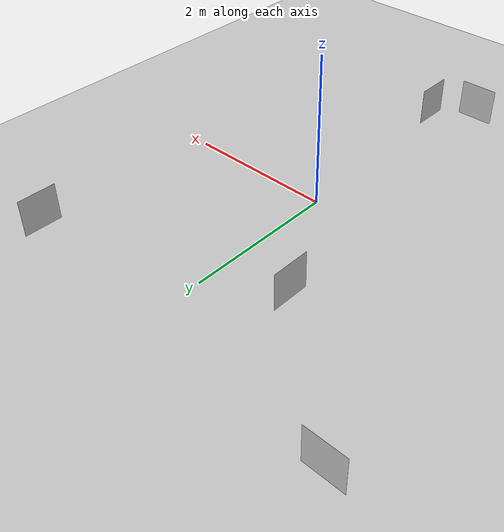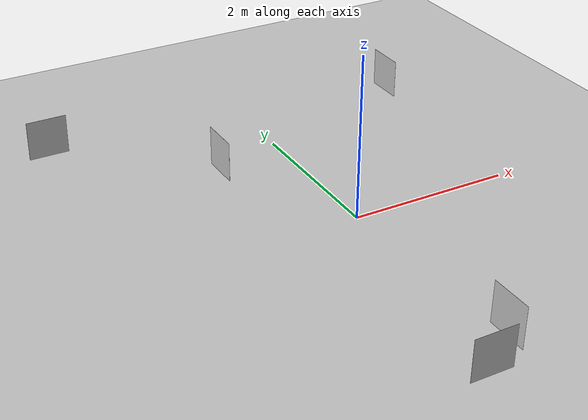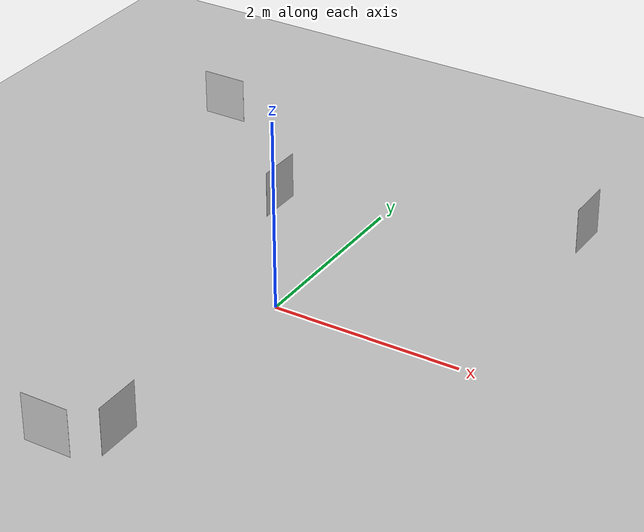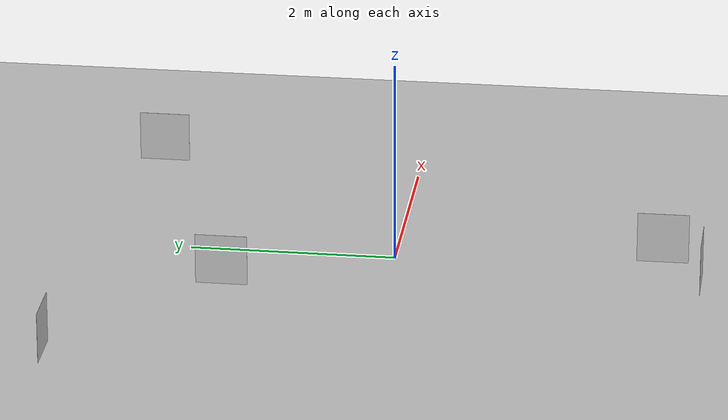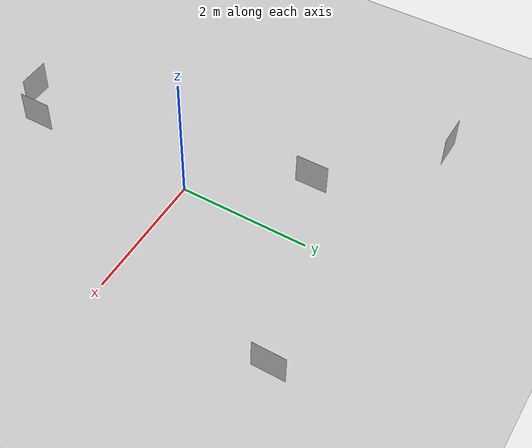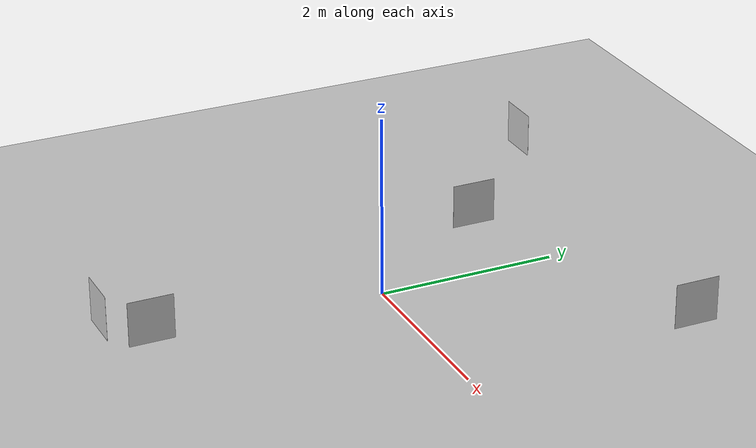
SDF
<sdf version="1.7">
 <world name="default">
  <scene><ambient>1 1 1 1</ambient><background>0.8 0.8 0.8 1</background></scene>
  <light name="sun" type="directional">
   <pose>0 0 10 0 -0 0</pose>
   <diffuse>0.8 0.8 0.8 1</diffuse>
   <specular>0.2 0.2 0.2 1</specular>
   <attenuation>
    <range>1000</range>
    <constant>0.9</constant>
    <linear>0.01</linear>
    <quadratic>0.001</quadratic>
   </attenuation>
   <direction>-0.5 0.1 -0.9</direction>
   <spot><inner_angle>0</inner_angle><outer_angle>0</outer_angle><falloff>0</falloff></spot>
  </light>
  <model name="ground_plane">
   <static>1</static>
   <link name="link">
    <collision name="collision">
     <geometry><plane><normal>0 0 1</normal><size>100 100</size></plane></geometry>
     <surface><friction><ode><mu>100</mu><mu2>50</mu2></ode></friction></surface>
    </collision>
    <visual name="visual">
     <cast_shadows>0</cast_shadows>
     <geometry><plane><normal>0 0 1</normal><size>100 100</size></plane></geometry>
     <material>
      <script><uri>file://media/materials/scripts/gazebo.material</uri><name>Gazebo/Grey</name></script>
     </material>
    </visual>
   </link>
  </model>
  <gravity>0 0 -9.8</gravity>
  <magnetic_field>6e-06 2.3e-05 -4.2e-05</magnetic_field>
  <atmosphere type="adiabatic"/>
  <physics type="ode">
   <max_step_size>0.001</max_step_size>
   <real_time_factor>1</real_time_factor>
   <real_time_update_rate>1000</real_time_update_rate>
  </physics>
  <scene><ambient>0.4 0.4 0.4 1</ambient><background>0.7 0.7 0.7 1</background><shadows>1</shadows></scene>
  <audio><device>default</device></audio>
  <spherical_coordinates>
   <surface_model>EARTH_WGS84</surface_model>
   <latitude_deg>0</latitude_deg>
   <longitude_deg>0</longitude_deg>
   <elevation>0</elevation>
   <heading_deg>0</heading_deg>
  </spherical_coordinates>
  <model name="maze_with_qr">
   <model name="qr_code_1">
    <static>1</static>
    <link name="qr_code_1_link">
     <pose>0 0 0.001 0 -0 1.5708</pose>
     <visual name="visual_qr_code_1">
      <cast_shadows>0</cast_shadows>
      <geometry><box><size>0.5 0.5 0.001</size></box></geometry>
      <material>
       <script>
        <uri>model://qr_code_1/materials/scripts</uri>
        <uri>model://qr_code_1/materials/textures</uri>
        <name>qr_code_1/qr_code_1</name>
       </script>
      </material>
     </visual>
    </link>
    <pose>0.437044 -2.90144 0.011834 3.14159 1.56722 3.14159</pose>
   </model>
   <model name="qr_code_1_0">
    <static>1</static>
    <link name="qr_code_1_link">
     <pose>0 0 0.001 0 -0 1.5708</pose>
     <visual name="visual_qr_code_1">
      <cast_shadows>0</cast_shadows>
      <geometry><box><size>0.5 0.5 0.001</size></box></geometry>
      <material>
       <script>
        <uri>model://qr_code_1/materials/scripts</uri>
        <uri>model://qr_code_1/materials/textures</uri>
        <name>qr_code_1/qr_code_1</name>
       </script>
      </material>
     </visual>
    </link>
    <pose>-0.583664 1.24796 0.01516 3.14159 -1.56762 3.14159</pose>
   </model>
   <model name="qr_code_2">
    <static>1</static>
    <link name="qr_code_2_link">
     <pose>0 0 0.001 0 -0 1.5708</pose>
     <visual name="visual_qr_code_2">
      <cast_shadows>0</cast_shadows>
      <geometry><box><size>0.5 0.5 0.001</size></box></geometry>
      <material>
       <script>
        <uri>model://qr_code_2/materials/scripts</uri>
        <uri>model://qr_code_2/materials/textures</uri>
        <name>qr_code_2/qr_code_2</name>
       </script>
      </material>
     </visual>
    </link>
    <pose>2.41537 2.28481 -0.017491 3.14159 -1.56853 3.14159</pose>
   </model>
   <model name="qr_code_2_0">
    <static>1</static>
    <link name="qr_code_2_link">
     <pose>0 0 0.001 0 -0 1.5708</pose>
     <visual name="visual_qr_code_2">
      <cast_shadows>0</cast_shadows>
      <geometry><box><size>0.5 0.5 0.001</size></box></geometry>
      <material>
       <script>
        <uri>model://qr_code_2/materials/scripts</uri>
        <uri>model://qr_code_2/materials/textures</uri>
        <name>qr_code_2/qr_code_2</name>
       </script>
      </material>
     </visual>
    </link>
    <pose>-2.23014 2.67091 -0.015303 1.57315 -0 0</pose>
   </model>
   <model name="qr_code_2_1">
    <static>1</static>
    <link name="qr_code_2_link">
     <pose>0 0 0.001 0 -0 1.5708</pose>
     <visual name="visual_qr_code_2">
      <cast_shadows>0</cast_shadows>
      <geometry><box><size>0.5 0.5 0.001</size></box></geometry>
      <material>
       <script>
        <uri>model://qr_code_2/materials/scripts</uri>
        <uri>model://qr_code_2/materials/textures</uri>
        <name>qr_code_2/qr_code_2</name>
       </script>
      </material>
     </visual>
    </link>
    <pose>-0.038613 -3.30224 0.0058 -1.57024 0 0</pose>
   </model>
   <static>0</static>
   <pose>-0.367116 0.307364 0.306034 0 -0 0</pose>
  </model>
 </world>
</sdf>
